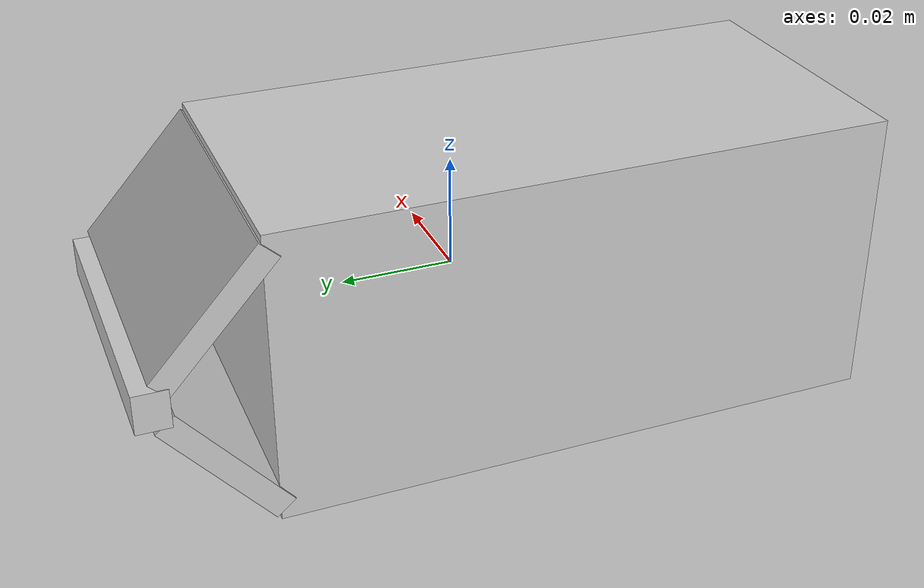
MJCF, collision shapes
<mujoco model="textured">
  <asset>
  <texture file="texture_map.png" name="tex-textured" type="2d" />
  <material name="textured" reflectance="0.5" texrepeat="1 1" texture="tex-textured" texuniform="false" />
  <mesh file="visual/textured_vis.msh" name="textured_vis" scale="0.0075 0.0075 0.0075" /></asset>
  <worldbody>
    <body>
      <body name="object">
      <geom solimp="0.998 0.998 0.001" solref="0.001 1" density="100" friction="0.95 0.3 0.1" type="mesh" mesh="textured_vis" conaffinity="0" contype="0" group="1" material="textured" /><geom solimp="0.998 0.998 0.001" solref="0.001 1" density="100" friction="0.95 0.3 0.1" type="box" pos="0.00037 -0.01500 0.00000" quat="0.70711 0.70711 0.00000 -0.00000" size="0.02625 0.02625 0.05475" group="0" rgba="0.8 0.8 0.8 0.3" /><geom solimp="0.998 0.998 0.001" solref="0.001 1" density="100" friction="0.95 0.3 0.1" type="box" pos="0.00005 0.04784 0.01352" quat="0.28687 0.64630 -0.28687 -0.64630" size="0.00218 0.01381 0.02631" group="0" rgba="0.8 0.8 0.8 0.3" /><geom solimp="0.998 0.998 0.001" solref="0.001 1" density="100" friction="0.95 0.3 0.1" type="box" pos="0.00005 0.04784 -0.01344" quat="0.64203 0.29630 0.64203 0.29630" size="0.00218 0.01381 0.02631" group="0" rgba="0.8 0.8 0.8 0.3" /><geom solimp="0.998 0.998 0.001" solref="0.001 1" density="100" friction="0.95 0.3 0.1" type="box" pos="0.00005 0.05849 0.00005" quat="0.50000 0.50000 -0.50000 -0.50000" size="0.00295 0.00348 0.02650" group="0" rgba="0.8 0.8 0.8 0.3" /></body>
      <site rgba="0 0 0 0" size="0.005" pos="0 0 -0.06" name="bottom_site" />
      <site rgba="0 0 0 0" size="0.005" pos="0 0 0.04" name="top_site" />
      <!-- robosuite placement uses only site pos[0] as XY radius; match milk collision half-extent. -->
      <site rgba="0 0 0 0" size="0.005" pos="0.06 0.06 0" name="horizontal_radius_site" />
    </body>
  </worldbody>
</mujoco>
